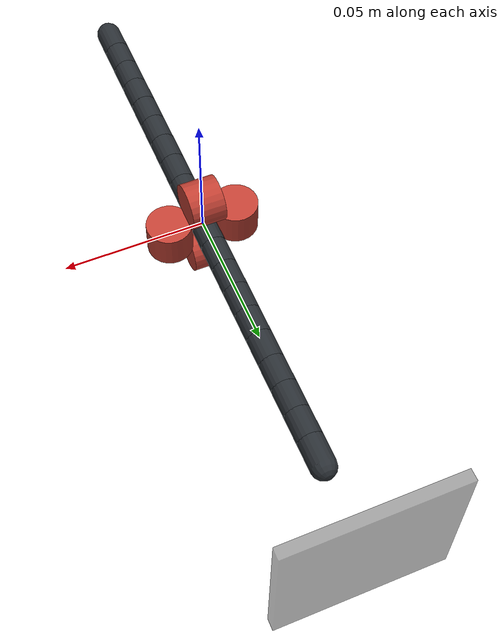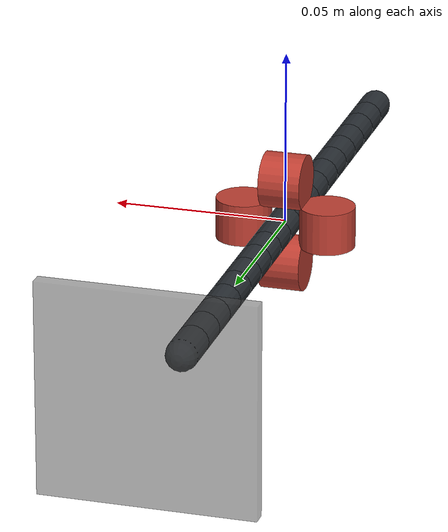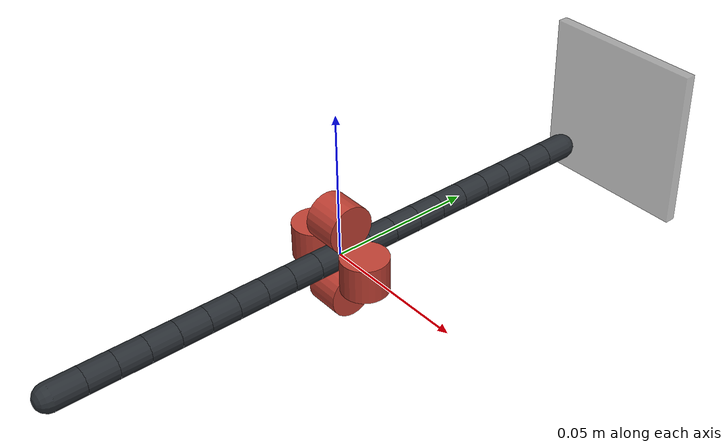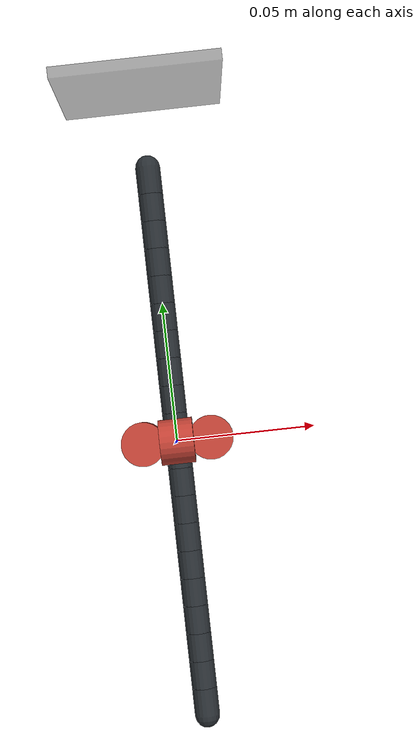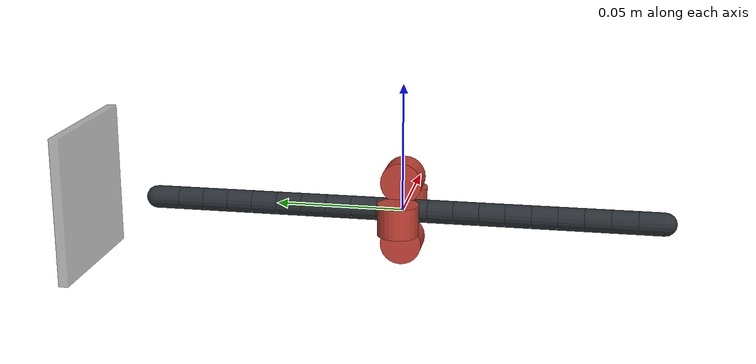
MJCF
<?xml version="1.0" ?>
<mujoco model="roller_feed_prototype">
  <compiler angle="radian" autolimits="true"/>
  <option gravity="0 0 0" timestep="0.0005" integrator="implicitfast">
    <flag contact="enable"/>
  </option>
  <default>
    <geom condim="3" margin="0.0002"/>
  </default>

  <asset>
    <material name="shaft_mat" rgba="0.16 0.18 0.20 1"/>
    <material name="roller_mat" rgba="0.75 0.25 0.20 1"/>
    <material name="obstacle_mat" rgba="0.3 0.3 0.3 0.5"/>
  </asset>

  <worldbody>
    <body name="roller_0" pos="0.012300 0.000000 0.000000">
      <joint name="roller_spin_0" type="hinge" axis="0.000000 0.000000 1.000000" damping="0.02" armature="0.0005"/>
      <inertial pos="0 0 0" mass="0.02" diaginertia="1e-6 1e-6 1e-6"/>
      <geom name="roller_0_geom" type="cylinder" size="0.008000 0.006000" zaxis="0.000000 0.000000 1.000000" friction="1.2 0.02 0.01" material="roller_mat"/>
    </body>
    <body name="roller_1" pos="0.000000 0.000000 0.012300">
      <joint name="roller_spin_1" type="hinge" axis="-1.000000 0.000000 0.000000" damping="0.02" armature="0.0005"/>
      <inertial pos="0 0 0" mass="0.02" diaginertia="1e-6 1e-6 1e-6"/>
      <geom name="roller_1_geom" type="cylinder" size="0.008000 0.006000" zaxis="-1.000000 0.000000 0.000000" friction="1.2 0.02 0.01" material="roller_mat"/>
    </body>
    <body name="roller_2" pos="-0.012300 0.000000 0.000000">
      <joint name="roller_spin_2" type="hinge" axis="-0.000000 0.000000 -1.000000" damping="0.02" armature="0.0005"/>
      <inertial pos="0 0 0" mass="0.02" diaginertia="1e-6 1e-6 1e-6"/>
      <geom name="roller_2_geom" type="cylinder" size="0.008000 0.006000" zaxis="-0.000000 0.000000 -1.000000" friction="1.2 0.02 0.01" material="roller_mat"/>
    </body>
    <body name="roller_3" pos="-0.000000 0.000000 -0.012300">
      <joint name="roller_spin_3" type="hinge" axis="1.000000 0.000000 -0.000000" damping="0.02" armature="0.0005"/>
      <inertial pos="0 0 0" mass="0.02" diaginertia="1e-6 1e-6 1e-6"/>
      <geom name="roller_3_geom" type="cylinder" size="0.008000 0.006000" zaxis="1.000000 0.000000 -0.000000" friction="1.2 0.02 0.01" material="roller_mat"/>
    </body>

    <geom name="obstacle" type="box" pos="0 0.130000 0" size="0.03 0.002 0.03" material="obstacle_mat"/>

    <body name="shaft_link_0" pos="0 -0.100000 0">
      <joint name="shaft_root_free" type="free"/>
      <inertial pos="0 0.005000 0" mass="0.005000" diaginertia="1e-6 1e-6 1e-6"/>
      <geom name="shaft_link_0_geom" type="capsule" fromto="0 0 0 0 0.010000 0" size="0.004500" material="shaft_mat" friction="0.08 0.005 0.001"/>
        <body name="shaft_link_1" pos="0 0.010000 0">
          <joint name="shaft_joint_1" type="hinge" axis="1 0 0" range="-0.349000 0.349000" stiffness="2.0" damping="0.3"/>
          <inertial pos="0 0.005000 0" mass="0.005000" diaginertia="1e-6 1e-6 1e-6"/>
          <geom name="shaft_link_1_geom" type="capsule" fromto="0 0 0 0 0.010000 0" size="0.004500" material="shaft_mat" friction="0.08 0.005 0.001"/>
          <body name="shaft_link_2" pos="0 0.010000 0">
            <joint name="shaft_joint_2" type="hinge" axis="0 0 1" range="-0.349000 0.349000" stiffness="2.0" damping="0.3"/>
            <inertial pos="0 0.005000 0" mass="0.005000" diaginertia="1e-6 1e-6 1e-6"/>
            <geom name="shaft_link_2_geom" type="capsule" fromto="0 0 0 0 0.010000 0" size="0.004500" material="shaft_mat" friction="0.08 0.005 0.001"/>
            <body name="shaft_link_3" pos="0 0.010000 0">
              <joint name="shaft_joint_3" type="hinge" axis="1 0 0" range="-0.349000 0.349000" stiffness="2.0" damping="0.3"/>
              <inertial pos="0 0.005000 0" mass="0.005000" diaginertia="1e-6 1e-6 1e-6"/>
              <geom name="shaft_link_3_geom" type="capsule" fromto="0 0 0 0 0.010000 0" size="0.004500" material="shaft_mat" friction="0.08 0.005 0.001"/>
              <body name="shaft_link_4" pos="0 0.010000 0">
                <joint name="shaft_joint_4" type="hinge" axis="0 0 1" range="-0.349000 0.349000" stiffness="2.0" damping="0.3"/>
                <inertial pos="0 0.005000 0" mass="0.005000" diaginertia="1e-6 1e-6 1e-6"/>
                <geom name="shaft_link_4_geom" type="capsule" fromto="0 0 0 0 0.010000 0" size="0.004500" material="shaft_mat" friction="0.08 0.005 0.001"/>
                <body name="shaft_link_5" pos="0 0.010000 0">
                  <joint name="shaft_joint_5" type="hinge" axis="1 0 0" range="-0.349000 0.349000" stiffness="2.0" damping="0.3"/>
                  <inertial pos="0 0.005000 0" mass="0.005000" diaginertia="1e-6 1e-6 1e-6"/>
                  <geom name="shaft_link_5_geom" type="capsule" fromto="0 0 0 0 0.010000 0" size="0.004500" material="shaft_mat" friction="0.08 0.005 0.001"/>
                  <body name="shaft_link_6" pos="0 0.010000 0">
                    <joint name="shaft_joint_6" type="hinge" axis="0 0 1" range="-0.349000 0.349000" stiffness="2.0" damping="0.3"/>
                    <inertial pos="0 0.005000 0" mass="0.005000" diaginertia="1e-6 1e-6 1e-6"/>
                    <geom name="shaft_link_6_geom" type="capsule" fromto="0 0 0 0 0.010000 0" size="0.004500" material="shaft_mat" friction="0.08 0.005 0.001"/>
                    <body name="shaft_link_7" pos="0 0.010000 0">
                      <joint name="shaft_joint_7" type="hinge" axis="1 0 0" range="-0.349000 0.349000" stiffness="2.0" damping="0.3"/>
                      <inertial pos="0 0.005000 0" mass="0.005000" diaginertia="1e-6 1e-6 1e-6"/>
                      <geom name="shaft_link_7_geom" type="capsule" fromto="0 0 0 0 0.010000 0" size="0.004500" material="shaft_mat" friction="0.08 0.005 0.001"/>
                      <body name="shaft_link_8" pos="0 0.010000 0">
                        <joint name="shaft_joint_8" type="hinge" axis="0 0 1" range="-0.349000 0.349000" stiffness="2.0" damping="0.3"/>
                        <inertial pos="0 0.005000 0" mass="0.005000" diaginertia="1e-6 1e-6 1e-6"/>
                        <geom name="shaft_link_8_geom" type="capsule" fromto="0 0 0 0 0.010000 0" size="0.004500" material="shaft_mat" friction="0.08 0.005 0.001"/>
                        <body name="shaft_link_9" pos="0 0.010000 0">
                          <joint name="shaft_joint_9" type="hinge" axis="1 0 0" range="-0.349000 0.349000" stiffness="2.0" damping="0.3"/>
                          <inertial pos="0 0.005000 0" mass="0.005000" diaginertia="1e-6 1e-6 1e-6"/>
                          <geom name="shaft_link_9_geom" type="capsule" fromto="0 0 0 0 0.010000 0" size="0.004500" material="shaft_mat" friction="0.08 0.005 0.001"/>
                          <body name="shaft_link_10" pos="0 0.010000 0">
                            <joint name="shaft_joint_10" type="hinge" axis="0 0 1" range="-0.349000 0.349000" stiffness="2.0" damping="0.3"/>
                            <inertial pos="0 0.005000 0" mass="0.005000" diaginertia="1e-6 1e-6 1e-6"/>
                            <geom name="shaft_link_10_geom" type="capsule" fromto="0 0 0 0 0.010000 0" size="0.004500" material="shaft_mat" friction="0.08 0.005 0.001"/>
                            <body name="shaft_link_11" pos="0 0.010000 0">
                              <joint name="shaft_joint_11" type="hinge" axis="1 0 0" range="-0.349000 0.349000" stiffness="2.0" damping="0.3"/>
                              <inertial pos="0 0.005000 0" mass="0.005000" diaginertia="1e-6 1e-6 1e-6"/>
                              <geom name="shaft_link_11_geom" type="capsule" fromto="0 0 0 0 0.010000 0" size="0.004500" material="shaft_mat" friction="0.08 0.005 0.001"/>
                              <body name="shaft_link_12" pos="0 0.010000 0">
                                <joint name="shaft_joint_12" type="hinge" axis="0 0 1" range="-0.349000 0.349000" stiffness="2.0" damping="0.3"/>
                                <inertial pos="0 0.005000 0" mass="0.005000" diaginertia="1e-6 1e-6 1e-6"/>
                                <geom name="shaft_link_12_geom" type="capsule" fromto="0 0 0 0 0.010000 0" size="0.004500" material="shaft_mat" friction="0.08 0.005 0.001"/>
                                <body name="shaft_link_13" pos="0 0.010000 0">
                                  <joint name="shaft_joint_13" type="hinge" axis="1 0 0" range="-0.349000 0.349000" stiffness="2.0" damping="0.3"/>
                                  <inertial pos="0 0.005000 0" mass="0.005000" diaginertia="1e-6 1e-6 1e-6"/>
                                  <geom name="shaft_link_13_geom" type="capsule" fromto="0 0 0 0 0.010000 0" size="0.004500" material="shaft_mat" friction="0.08 0.005 0.001"/>
                                  <body name="shaft_link_14" pos="0 0.010000 0">
                                    <joint name="shaft_joint_14" type="hinge" axis="0 0 1" range="-0.349000 0.349000" stiffness="2.0" damping="0.3"/>
                                    <inertial pos="0 0.005000 0" mass="0.005000" diaginertia="1e-6 1e-6 1e-6"/>
                                    <geom name="shaft_link_14_geom" type="capsule" fromto="0 0 0 0 0.010000 0" size="0.004500" material="shaft_mat" friction="0.08 0.005 0.001"/>
                                    <body name="shaft_link_15" pos="0 0.010000 0">
                                      <joint name="shaft_joint_15" type="hinge" axis="1 0 0" range="-0.349000 0.349000" stiffness="2.0" damping="0.3"/>
                                      <inertial pos="0 0.005000 0" mass="0.005000" diaginertia="1e-6 1e-6 1e-6"/>
                                      <geom name="shaft_link_15_geom" type="capsule" fromto="0 0 0 0 0.010000 0" size="0.004500" material="shaft_mat" friction="0.08 0.005 0.001"/>
                                      <body name="shaft_link_16" pos="0 0.010000 0">
                                        <joint name="shaft_joint_16" type="hinge" axis="0 0 1" range="-0.349000 0.349000" stiffness="2.0" damping="0.3"/>
                                        <inertial pos="0 0.005000 0" mass="0.005000" diaginertia="1e-6 1e-6 1e-6"/>
                                        <geom name="shaft_link_16_geom" type="capsule" fromto="0 0 0 0 0.010000 0" size="0.004500" material="shaft_mat" friction="0.08 0.005 0.001"/>
                                        <body name="shaft_link_17" pos="0 0.010000 0">
                                          <joint name="shaft_joint_17" type="hinge" axis="1 0 0" range="-0.349000 0.349000" stiffness="2.0" damping="0.3"/>
                                          <inertial pos="0 0.005000 0" mass="0.005000" diaginertia="1e-6 1e-6 1e-6"/>
                                          <geom name="shaft_link_17_geom" type="capsule" fromto="0 0 0 0 0.010000 0" size="0.004500" material="shaft_mat" friction="0.08 0.005 0.001"/>
                                          <body name="shaft_link_18" pos="0 0.010000 0">
                                            <joint name="shaft_joint_18" type="hinge" axis="0 0 1" range="-0.349000 0.349000" stiffness="2.0" damping="0.3"/>
                                            <inertial pos="0 0.005000 0" mass="0.005000" diaginertia="1e-6 1e-6 1e-6"/>
                                            <geom name="shaft_link_18_geom" type="capsule" fromto="0 0 0 0 0.010000 0" size="0.004500" material="shaft_mat" friction="0.08 0.005 0.001"/>
                                            <body name="shaft_link_19" pos="0 0.010000 0">
                                              <joint name="shaft_joint_19" type="hinge" axis="1 0 0" range="-0.349000 0.349000" stiffness="2.0" damping="0.3"/>
                                              <inertial pos="0 0.005000 0" mass="0.005000" diaginertia="1e-6 1e-6 1e-6"/>
                                              <geom name="shaft_link_19_geom" type="capsule" fromto="0 0 0 0 0.010000 0" size="0.004500" material="shaft_mat" friction="0.08 0.005 0.001"/>
                                            </body>
                                          </body>
                                        </body>
                                      </body>
                                    </body>
                                  </body>
                                </body>
                              </body>
                            </body>
                          </body>
                        </body>
                      </body>
                    </body>
                  </body>
                </body>
              </body>
            </body>
          </body>
        </body>
    </body>
  </worldbody>

  <contact>
    <exclude body1="shaft_link_0" body2="shaft_link_1"/>
    <exclude body1="shaft_link_1" body2="shaft_link_2"/>
    <exclude body1="shaft_link_2" body2="shaft_link_3"/>
    <exclude body1="shaft_link_3" body2="shaft_link_4"/>
    <exclude body1="shaft_link_4" body2="shaft_link_5"/>
    <exclude body1="shaft_link_5" body2="shaft_link_6"/>
    <exclude body1="shaft_link_6" body2="shaft_link_7"/>
    <exclude body1="shaft_link_7" body2="shaft_link_8"/>
    <exclude body1="shaft_link_8" body2="shaft_link_9"/>
    <exclude body1="shaft_link_9" body2="shaft_link_10"/>
    <exclude body1="shaft_link_10" body2="shaft_link_11"/>
    <exclude body1="shaft_link_11" body2="shaft_link_12"/>
    <exclude body1="shaft_link_12" body2="shaft_link_13"/>
    <exclude body1="shaft_link_13" body2="shaft_link_14"/>
    <exclude body1="shaft_link_14" body2="shaft_link_15"/>
    <exclude body1="shaft_link_15" body2="shaft_link_16"/>
    <exclude body1="shaft_link_16" body2="shaft_link_17"/>
    <exclude body1="shaft_link_17" body2="shaft_link_18"/>
    <exclude body1="shaft_link_18" body2="shaft_link_19"/>
    <exclude body1="roller_0" body2="roller_1"/>
    <exclude body1="roller_0" body2="roller_2"/>
    <exclude body1="roller_0" body2="roller_3"/>
    <exclude body1="roller_1" body2="roller_2"/>
    <exclude body1="roller_1" body2="roller_3"/>
    <exclude body1="roller_2" body2="roller_3"/>
  </contact>

  <actuator>
    <velocity name="roller_act_0" joint="roller_spin_0" kv="0.05" forcelimited="true" forcerange="-1.0 1.0"/>
    <velocity name="roller_act_1" joint="roller_spin_1" kv="0.05" forcelimited="true" forcerange="-1.0 1.0"/>
    <velocity name="roller_act_2" joint="roller_spin_2" kv="0.05" forcelimited="true" forcerange="-1.0 1.0"/>
    <velocity name="roller_act_3" joint="roller_spin_3" kv="0.05" forcelimited="true" forcerange="-1.0 1.0"/>
  </actuator>
</mujoco>
